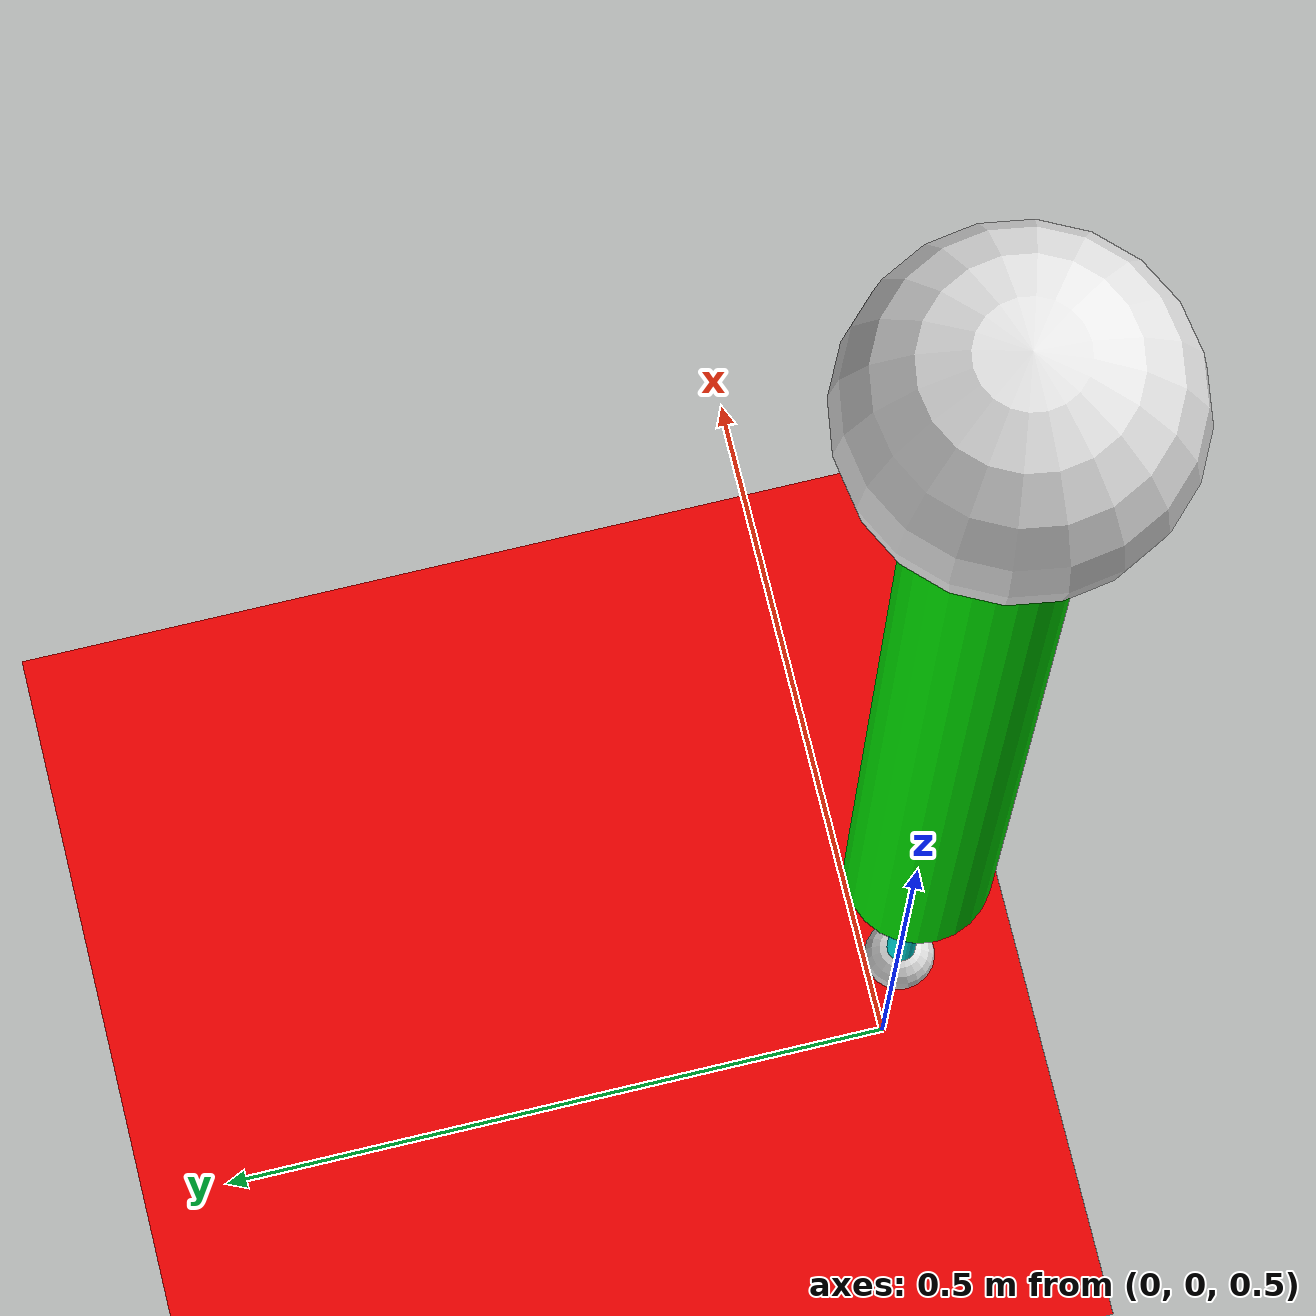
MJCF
<mujoco model="MuJoCo Model">
  <compiler angle="radian"/>
  <option timestep="0.001" integrator="RK4"/>
  <worldbody>
    <geom size="1 1 0.1" type="plane" rgba="0.9 0 0 1"/>
    <light pos="0 0 3" dir="0 0 -1" diffuse="0.5 0.5 0.5"/>
    <body name="torso" pos="0 0 2">
      <joint armature="0" damping="0" limited="false" name="x" pos="0 0 0" axis="1 0 0" type="slide"/>
      <joint armature="0" damping="0" limited="false" name="z" pos="0 0 0" axis="0 0 1" type="slide"/>
      <joint armature="0" axis="0 1 0" damping="0" limited="false" name="y" pos="0 0 0" stiffness="0" type="hinge"/>
      <geom size="0.1" mass="1" rgba="0.9 0.9 0.9 1"/>
      <body name="leg" pos="0 0 -0.5">
        <joint name="hip" pos="0 0 0.5" axis="0 -1 0"/>
        <geom size="0.05 0.5" type="cylinder" mass="1" rgba="0 0.9 0 1"/>
        <body name="foot" pos="0 0 -0.75">
          <joint name="knee" pos="0 0 0.25" axis="0 0 -1" type="slide"/>
          <geom size="0.01 0.125" pos="0 0 0.125" type="cylinder" mass="0.1" rgba="0 0.9 0.9 1"/>
          <geom size="0.025" mass="0.1" rgba="0.9 0.9 0.9 1"/>
        </body>
      </body>
    </body>
  </worldbody>
  <actuator>
    <general ctrllimited="true" ctrlrange="-1.0 1.0" gear="1.0" joint="hip" biastype="affine" gainprm="0"/>
    <general ctrllimited="true" ctrlrange="-1.0 1.0" gear="1.0" joint="knee" biastype="affine" gainprm="0"/>
  </actuator>
</mujoco>
